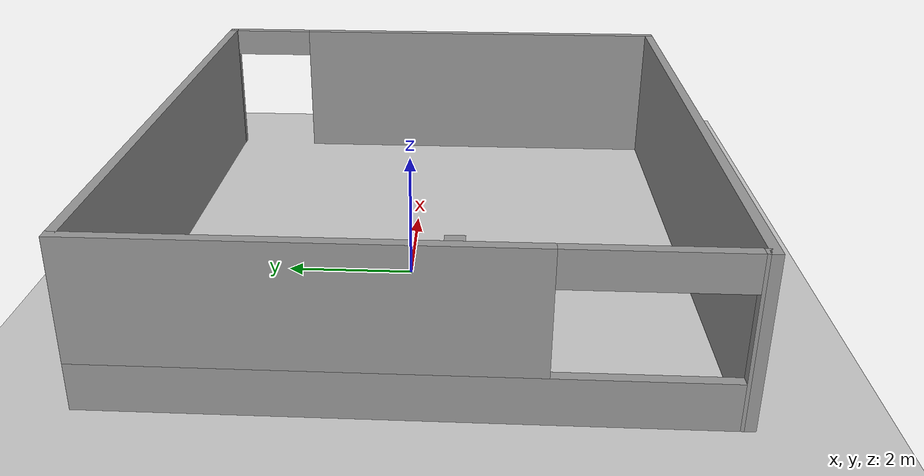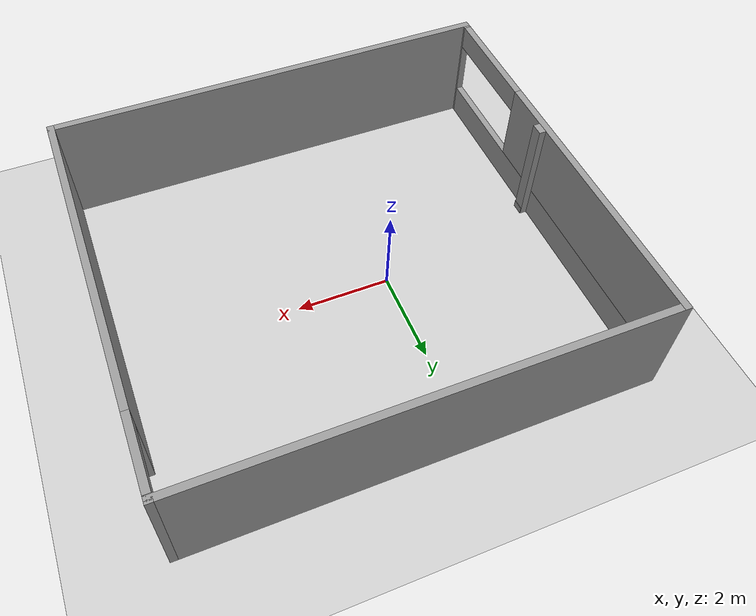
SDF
<sdf version="1.7">
 <world name="default">
  <light name="sun" type="directional">
   <pose>0 0 10 0 -0 0</pose>
   <diffuse>0.8 0.8 0.8 1</diffuse>
   <specular>0.2 0.2 0.2 1</specular>
   <attenuation>
    <range>1000</range>
    <constant>0.9</constant>
    <linear>0.01</linear>
    <quadratic>0.001</quadratic>
   </attenuation>
   <direction>-0.5 0.1 -0.9</direction>
   <spot><inner_angle>0</inner_angle><outer_angle>0</outer_angle><falloff>0</falloff></spot>
  </light>
  <model name="ground_plane">
   <static>1</static>
   <link name="link">
    <collision name="collision">
     <geometry><plane><normal>0 0 1</normal><size>100 100</size></plane></geometry>
     <surface>
      <contact><collide_bitmask>65535</collide_bitmask></contact>
      <friction><ode><mu>100</mu><mu2>50</mu2></ode></friction>
     </surface>
    </collision>
    <visual name="visual">
     <cast_shadows>0</cast_shadows>
     <geometry><plane><normal>0 0 1</normal><size>100 100</size></plane></geometry>
     <material>
      <script><uri>file://media/materials/scripts/gazebo.material</uri><name>Gazebo/Grey</name></script>
     </material>
    </visual>
   </link>
  </model>
  <gravity>0 0 -9.8</gravity>
  <magnetic_field>6e-06 2.3e-05 -4.2e-05</magnetic_field>
  <atmosphere type="adiabatic"/>
  <physics type="ode">
   <max_step_size>0.001</max_step_size>
   <real_time_factor>1</real_time_factor>
   <real_time_update_rate>1000</real_time_update_rate>
  </physics>
  <scene><ambient>0.4 0.4 0.4 1</ambient><background>0.7 0.7 0.7 1</background><shadows>1</shadows></scene>
  <spherical_coordinates>
   <surface_model>EARTH_WGS84</surface_model>
   <latitude_deg>0</latitude_deg>
   <longitude_deg>0</longitude_deg>
   <elevation>0</elevation>
   <heading_deg>0</heading_deg>
  </spherical_coordinates>
  <model name="ambiente206">
   <pose>0.961405 -0.211594 0 0 -0 0</pose>
   <link name="Wall_1">
    <collision name="Wall_1_Collision">
     <geometry><box><size>9.75 0.15 2.5</size></box></geometry>
     <pose>0 0 1.25 0 -0 0</pose>
    </collision>
    <visual name="Wall_1_Visual">
     <pose>0 0 1.25 0 -0 0</pose>
     <geometry><box><size>9.75 0.15 2.5</size></box></geometry>
     <material>
      <script><uri>file://media/materials/scripts/gazebo.material</uri><name>Gazebo/Grey</name></script>
      <ambient>1 1 1 1</ambient>
     </material>
     <meta><layer>0</layer></meta>
    </visual>
    <pose>-0 -4.3 0 0 -0 3.14159</pose>
   </link>
   <link name="Wall_11">
    <collision name="Wall_11_Collision">
     <geometry><box><size>0.26 0.15 2.5</size></box></geometry>
     <pose>0 0 1.25 0 -0 0</pose>
    </collision>
    <visual name="Wall_11_Visual">
     <pose>0 0 1.25 0 -0 0</pose>
     <geometry><box><size>0.26 0.15 2.5</size></box></geometry>
     <material>
      <script><uri>file://media/materials/scripts/gazebo.material</uri><name>Gazebo/Grey</name></script>
      <ambient>1 1 1 1</ambient>
     </material>
     <meta><layer>0</layer></meta>
    </visual>
    <pose>-4.65327 -0.577436 0 0 -0 1.5708</pose>
   </link>
   <link name="Wall_12">
    <collision name="Wall_12_Collision">
     <geometry><box><size>0.26 0.15 0.16</size></box></geometry>
     <pose>0 0 0.08 0 -0 0</pose>
    </collision>
    <visual name="Wall_12_Visual">
     <pose>0 0 0.08 0 -0 0</pose>
     <geometry><box><size>0.26 0.15 0.16</size></box></geometry>
     <material>
      <script><uri>file://media/materials/scripts/gazebo.material</uri><name>Gazebo/Grey</name></script>
      <ambient>1 1 1 1</ambient>
     </material>
     <meta><layer>0</layer></meta>
    </visual>
    <pose>-4.64571 -0.584997 0 0 -0 -1.5708</pose>
   </link>
   <link name="Wall_2">
    <pose>-4.8 -0 0 0 -0 1.5708</pose>
    <visual name="Wall_2_Visual_0">
     <pose>-4.27565 0 1.25 0 -0 0</pose>
     <geometry><box><size>0.198706 0.15 2.5</size></box></geometry>
     <material>
      <script><uri>file://media/materials/scripts/gazebo.material</uri><name>Gazebo/Grey</name></script>
      <ambient>1 1 1 1</ambient>
     </material>
     <meta><layer>0</layer></meta>
    </visual>
    <collision name="Wall_2_Collision_0">
     <geometry><box><size>0.198706 0.15 2.5</size></box></geometry>
     <pose>-4.27565 0 1.25 0 -0 0</pose>
    </collision>
    <visual name="Wall_2_Visual_1">
     <pose>0.099353 0 0.35 0 -0 0</pose>
     <geometry><box><size>8.55129 0.15 0.7</size></box></geometry>
     <material>
      <script><uri>file://media/materials/scripts/gazebo.material</uri><name>Gazebo/Grey</name></script>
      <ambient>1 1 1 1</ambient>
     </material>
     <meta><layer>0</layer></meta>
    </visual>
    <collision name="Wall_2_Collision_1">
     <geometry><box><size>8.55129 0.15 0.7</size></box></geometry>
     <pose>0.099353 0 0.35 0 -0 0</pose>
    </collision>
    <visual name="Wall_2_Visual_2">
     <pose>1.29935 0 1.6 0 -0 0</pose>
     <geometry><box><size>6.15129 0.15 1.8</size></box></geometry>
     <material>
      <script><uri>file://media/materials/scripts/gazebo.material</uri><name>Gazebo/Grey</name></script>
      <ambient>1 1 1 1</ambient>
     </material>
     <meta><layer>0</layer></meta>
    </visual>
    <collision name="Wall_2_Collision_2">
     <geometry><box><size>6.15129 0.15 1.8</size></box></geometry>
     <pose>1.29935 0 1.6 0 -0 0</pose>
    </collision>
    <visual name="Wall_2_Visual_3">
     <pose>-2.97629 0 2.23 0 -0 0</pose>
     <geometry><box><size>2.4 0.15 0.54</size></box></geometry>
     <material>
      <script><uri>file://media/materials/scripts/gazebo.material</uri><name>Gazebo/Grey</name></script>
      <ambient>1 1 1 1</ambient>
     </material>
     <meta><layer>0</layer></meta>
    </visual>
    <collision name="Wall_2_Collision_3">
     <geometry><box><size>2.4 0.15 0.54</size></box></geometry>
     <pose>-2.97629 0 2.23 0 -0 0</pose>
    </collision>
   </link>
   <link name="Wall_3">
    <collision name="Wall_3_Collision">
     <geometry><box><size>9.75 0.15 2.5</size></box></geometry>
     <pose>0 0 1.25 0 -0 0</pose>
    </collision>
    <visual name="Wall_3_Visual">
     <pose>0 0 1.25 0 -0 0</pose>
     <geometry><box><size>9.75 0.15 2.5</size></box></geometry>
     <material>
      <script><uri>file://media/materials/scripts/gazebo.material</uri><name>Gazebo/Grey</name></script>
      <ambient>1 1 1 1</ambient>
     </material>
     <meta><layer>0</layer></meta>
    </visual>
    <pose>-0 4.3 0 0 -0 0</pose>
   </link>
   <link name="Wall_4">
    <collision name="Wall_4_Collision">
     <geometry><box><size>0.15 0.15 2.5</size></box></geometry>
     <pose>0 0 1.25 0 -0 0</pose>
    </collision>
    <visual name="Wall_4_Visual">
     <pose>0 0 1.25 0 -0 0</pose>
     <geometry><box><size>0.15 0.15 2.5</size></box></geometry>
     <material>
      <script><uri>file://media/materials/scripts/gazebo.material</uri><name>Gazebo/Grey</name></script>
      <ambient>1 1 1 1</ambient>
     </material>
     <meta><layer>0</layer></meta>
    </visual>
    <pose>4.8 4.3 0 0 -0 0</pose>
   </link>
   <link name="Wall_5">
    <pose>4.8 -0 0 0 -0 -1.5708</pose>
    <visual name="Wall_5_Visual_0">
     <pose>-4.2949 0 1.25 0 -0 0</pose>
     <geometry><box><size>0.160204 0.15 2.5</size></box></geometry>
     <material>
      <script><uri>file://media/materials/scripts/gazebo.material</uri><name>Gazebo/Grey</name></script>
      <ambient>1 1 1 1</ambient>
     </material>
     <meta><layer>0</layer></meta>
    </visual>
    <collision name="Wall_5_Collision_0">
     <geometry><box><size>0.160204 0.15 2.5</size></box></geometry>
     <pose>-4.2949 0 1.25 0 -0 0</pose>
    </collision>
    <visual name="Wall_5_Visual_1">
     <pose>0.830102 0 1.25 0 -0 0</pose>
     <geometry><box><size>7.0898 0.15 2.5</size></box></geometry>
     <material>
      <script><uri>file://media/materials/scripts/gazebo.material</uri><name>Gazebo/Grey</name></script>
      <ambient>1 1 1 1</ambient>
     </material>
     <meta><layer>0</layer></meta>
    </visual>
    <collision name="Wall_5_Collision_1">
     <geometry><box><size>7.0898 0.15 2.5</size></box></geometry>
     <pose>0.830102 0 1.25 0 -0 0</pose>
    </collision>
    <visual name="Wall_5_Visual_2">
     <pose>-3.4648 0 2.25 0 -0 0</pose>
     <geometry><box><size>1.5 0.15 0.5</size></box></geometry>
     <material>
      <script><uri>file://media/materials/scripts/gazebo.material</uri><name>Gazebo/Grey</name></script>
      <ambient>1 1 1 1</ambient>
     </material>
     <meta><layer>0</layer></meta>
    </visual>
    <collision name="Wall_5_Collision_2">
     <geometry><box><size>1.5 0.15 0.5</size></box></geometry>
     <pose>-3.4648 0 2.25 0 -0 0</pose>
    </collision>
   </link>
   <static>1</static>
  </model>
 </world>
</sdf>
